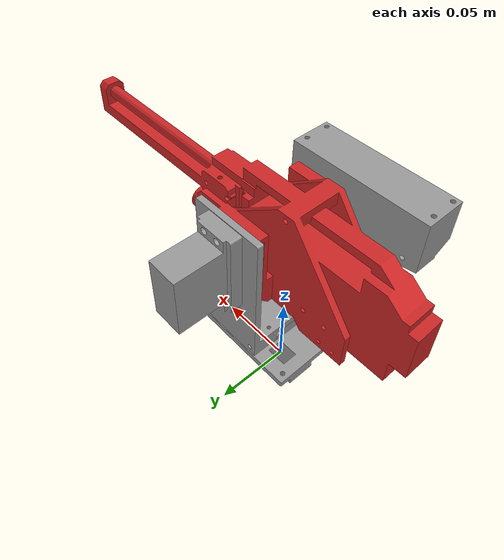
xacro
<?xml version="1.0"?>
<robot name="my_robo" xmlns:xacro="http://ros.org/wiki/xacro">
  <xacro:include filename="$(find s4_gun)/urdf/common.urdf.xacro"/>
  <xacro:include filename="$(find s4_gun)/urdf/s4_gun.urdf.xacro"/>

  <link name="base_link"/>

  <xacro:s4_gun prefix="gun0" parent="base_link" pos_x="0.010" pos_z="0.038" />

  <!-- ===============  Gazebo =============== -->
  <gazebo>
    <plugin name="gazebo_ros_control" filename="libgazebo_ros_control.so">
      <robotNamespace>my_robo</robotNamespace>
    </plugin>
  </gazebo>

</robot>

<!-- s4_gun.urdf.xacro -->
<robot xmlns:xacro="http://ros.org/wiki/xacro">

  <xacro:macro name="s4_gun" params="prefix parent pos_x pos_z">
    <joint name="${prefix}/base1_joint" type="fixed">
      <parent link="${parent}"/>
      <child link="${prefix}/base1_link"/>
      <origin rpy="0 0 0" xyz="${pos_x} 0 ${pos_z}"/>
    </joint>

    <link name="${prefix}/base1_link">
      <visual>
        <origin xyz="0 0 0" rpy="0 0 0"/>
        <geometry>
          <mesh filename="package://s4_gun/stl/base1.stl" />
        </geometry>
        <material name="gray"/>
      </visual>
      <inertial>
        <mass value="0.130"/>
        <inertia ixx="0.0001" ixy="0" ixz="0" iyy="0.0001" iyz="0" izz="0.0001"/>
      </inertial>
    </link>

    <joint name="${prefix}/base2_joint" type="continuous">
      <parent link="${prefix}/base1_link"/>
      <child link="${prefix}/base2_link"/>
      <origin rpy="0 0 0" xyz="0 0 0.016"/>
      <axis xyz="0 0 1"/>
      <dynamics damping="0.7"/>
    </joint>

    <link name="${prefix}/base2_link">
      <visual>
        <origin xyz="0 0 0" rpy="0 0 0"/>
        <geometry>
          <mesh filename="package://s4_gun/stl/base2.stl" />
        </geometry>
        <material name="gray"/>
      </visual>
      <inertial>
        <mass value="0.190"/>
        <inertia ixx="0.001" ixy="0" ixz="0" iyy="0.001" iyz="0" izz="0.0001"/>
      </inertial>
    </link>

    <joint name="${prefix}/gun_joint" type="continuous">
      <parent link="${prefix}/base2_link"/>
      <child link="${prefix}/gun_link"/>
      <origin rpy="0 0 0" xyz="0 0 0.070"/>
      <axis xyz="0 1 0"/>
      <dynamics damping="0.1"/>
    </joint>

    <link name="${prefix}/gun_link">
      <visual>
        <origin xyz="0 0 0" rpy="0 0 0"/>
        <geometry>
          <mesh filename="package://s4_gun/stl/gun.stl" />
        </geometry>
        <material name="light_red"/>
      </visual>
      <inertial>
        <mass value="0.190"/>
        <inertia ixx="0.0001" ixy="0" ixz="0" iyy="0.001" iyz="0" izz="0.001"/>
      </inertial>
    </link>

    <joint name="${prefix}/laser_joint" type="fixed">
      <parent link="${prefix}/gun_link"/>
      <child link="${prefix}/laser_link"/>
      <origin rpy="0 0 0" xyz="0.030 0 -0.034"/>
    </joint>
    <link name="${prefix}/laser_link"/>

    <joint name="${prefix}/standard_joint" type="fixed">
      <parent link="${parent}"/>
      <child link="${prefix}/gun_standard"/>
      <origin rpy="0 0 0" xyz="0.01 0 0.124"/>
    </joint>
    <link name="${prefix}/gun_standard" />

    <!-- ===============  Transmission =============== -->

    <transmission name="${prefix}_base2_trans">
      <type>transmission_interface/SimpleTransmission</type>
      <joint name="${prefix}_base2_joint">
        <hardwareInterface>hardware_interface/PositionJointInterface</hardwareInterface>
      </joint>
      <actuator name="${prefix}_base2_motor">
        <hardwareInterface>hardware_interface/PositionJointInterface</hardwareInterface>
        <mechanicalReduction>1</mechanicalReduction>
      </actuator>
    </transmission>

    <transmission name="${prefix}_gun_trans">
      <type>transmission_interface/SimpleTransmission</type>
      <joint name="${prefix}_gun_joint">
        <hardwareInterface>hardware_interface/PositionJointInterface</hardwareInterface>
      </joint>
      <actuator name="${prefix}_gun_motor">
        <hardwareInterface>hardware_interface/PositionJointInterface</hardwareInterface>
        <mechanicalReduction>1</mechanicalReduction>
      </actuator>
    </transmission>

    <!-- ===============  Gazebo =============== -->

    <gazebo reference="${prefix}_base1_link">
      <mu1 value="0.8" />
      <mu2 value="0.8" />
      <material>Gazebo/Gray</material>
    </gazebo>

    <gazebo reference="${prefix}_base2_link">
      <mu1 value="0.8" />
      <mu2 value="0.8" />
      <material>Gazebo/Gray</material>
    </gazebo>

  </xacro:macro>
</robot>
